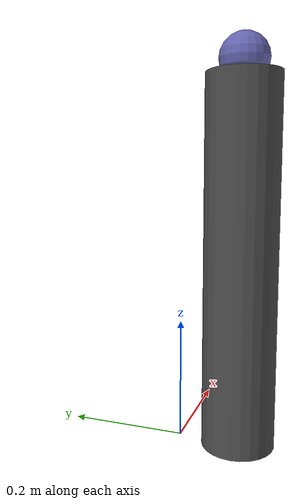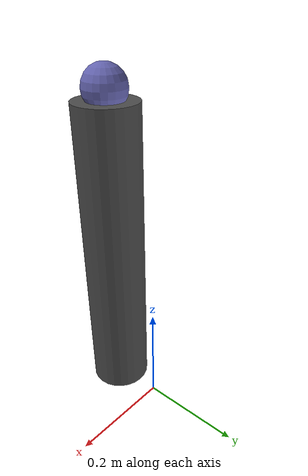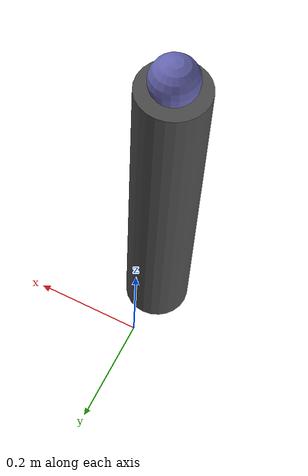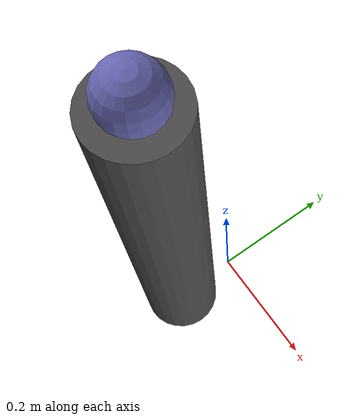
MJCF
<?xml version='1.0' encoding='utf-8'?>
<mujoco model="SimpleArm">
  <compiler angle="radian" />

  <default>
    <joint limited="true" damping="1.0" armature="0.01" />
    <!-- Arm geoms use contype=2: collide with cup (3) and floor (affi=3), not table (1) -->
    <geom contype="2" conaffinity="2" condim="3" friction="1.0 0.5 0.01" />
    <position ctrlrange="-1 1" kp="50" />
  </default>

  <worldbody>
    <body name="base" pos="0 -0.10 0">
      <!-- Pedestal: raises the arm above the table surface -->
      <geom name="pedestal" type="cylinder" size="0.06 0.30"
            pos="0 0 0.30" rgba="0.3 0.3 0.3 1.0"
            contype="1" conaffinity="1" />

      <!-- Shoulder yaw: rotates arm around vertical axis -->
      <body name="shoulder" pos="0 0 0.62">
        <inertial pos="0 0 0" mass="1.0"
                  fullinertia="0.002 0.002 0.002 0 0 0" />
        <joint name="shoulder_yaw" type="hinge" axis="0 0 1"
               range="-3.14159 3.14159" damping="5.0" />
        <geom name="shoulder_geom" type="sphere" size="0.04"
              rgba="0.4 0.4 0.7 1.0" />

        <!-- Shoulder pitch: tilts arm up/down -->
        <body name="upper_arm" pos="0 0 0">
          <inertial pos="0 0 -0.125" mass="2.0"
                    fullinertia="0.02 0.02 0.003 0 0 0" />
          <joint name="shoulder_pitch" type="hinge" axis="1 0 0"
                 range="-1.571 2.618" damping="5.0" />
          <geom name="upper_arm_geom" type="capsule"
                fromto="0 0 0 0 0 -0.25" size="0.025"
                rgba="0.4 0.4 0.7 1.0" />

          <!-- Elbow: bends forearm -->
          <body name="forearm" pos="0 0 -0.25">
            <inertial pos="0 0 -0.10" mass="1.0"
                      fullinertia="0.008 0.008 0.001 0 0 0" />
            <joint name="elbow" type="hinge" axis="1 0 0"
                   range="-2.356 0" damping="3.0" />
            <geom name="forearm_geom" type="capsule"
                  fromto="0 0 0 0 0 -0.20" size="0.02"
                  rgba="0.4 0.7 0.4 1.0" />

            <!-- Wrist pitch: tilts end effector -->
            <body name="wrist" pos="0 0 -0.20">
              <inertial pos="0 0 0" mass="0.3"
                        fullinertia="0.0005 0.0005 0.0005 0 0 0" />
              <joint name="wrist_pitch" type="hinge" axis="1 0 0"
                     range="-1.571 1.571" damping="1.0" />

              <!-- Wrist roll: rotates end effector -->
              <body name="wrist_roll_link" pos="0 0 0">
                <inertial pos="0 0 -0.015" mass="0.2"
                          fullinertia="0.0002 0.0002 0.0001 0 0 0" />
                <joint name="wrist_roll" type="hinge" axis="0 0 1"
                       range="-3.14159 3.14159" damping="0.2" />
                <geom name="wrist_geom" type="cylinder" size="0.018 0.015"
                      rgba="0.7 0.4 0.4 1.0" />

                <!-- Gripper base -->
                <body name="gripper_base" pos="0 0 -0.025">
                  <inertial pos="0 0 0" mass="0.1"
                            fullinertia="0.0001 0.0001 0.0001 0 0 0" />
                  <geom name="gripper_base_geom" type="box"
                        size="0.015 0.025 0.008"
                        rgba="0.3 0.3 0.3 1.0" />

                  <!-- Site at the gripper center for distance tracking -->
                  <site name="gripper_site" pos="0 0 -0.05" size="0.005" />

                  <!-- Left finger (slides outward in -Y to open) -->
                  <body name="finger_left" pos="0 -0.005 -0.008">
                    <inertial pos="0 0 -0.035" mass="0.05"
                              fullinertia="0.00002 0.00002 0.000005 0 0 0" />
                    <joint name="finger_left" type="slide" axis="0 -1 0"
                           range="0 0.025" damping="0.5" />
                    <geom name="finger_left_geom" type="box"
                          size="0.008 0.005 0.035"
                          pos="0 0 -0.035"
                          rgba="0.8 0.8 0.3 1.0" friction="2.0 1.0 0.01" />
                    <!-- Touch sensor site on inner face -->
                    <site name="finger_left_touch" pos="0 0.005 -0.035"
                          size="0.005" />
                  </body>

                  <!-- Right finger (slides outward in +Y to open) -->
                  <body name="finger_right" pos="0 0.005 -0.008">
                    <inertial pos="0 0 -0.035" mass="0.05"
                              fullinertia="0.00002 0.00002 0.000005 0 0 0" />
                    <joint name="finger_right" type="slide" axis="0 1 0"
                           range="0 0.025" damping="0.5" />
                    <geom name="finger_right_geom" type="box"
                          size="0.008 0.005 0.035"
                          pos="0 0 -0.035"
                          rgba="0.8 0.8 0.3 1.0" friction="2.0 1.0 0.01" />
                    <!-- Touch sensor site on inner face -->
                    <site name="finger_right_touch" pos="0 -0.005 -0.035"
                          size="0.005" />
                  </body>
                </body>
              </body>
            </body>
          </body>
        </body>
      </body>
    </body>
  </worldbody>

  <!-- Couple the two fingers so one actuator controls both -->
  <equality>
    <joint joint1="finger_left" joint2="finger_right"
           polycoef="0 1 0 0 0" />
  </equality>

  <contact>
    <!-- Exclude adjacent body pairs from self-collision -->
    <exclude body1="base" body2="shoulder" />
    <exclude body1="shoulder" body2="upper_arm" />
    <exclude body1="upper_arm" body2="forearm" />
    <exclude body1="forearm" body2="wrist" />
    <exclude body1="wrist" body2="wrist_roll_link" />
    <exclude body1="wrist_roll_link" body2="gripper_base" />
    <exclude body1="gripper_base" body2="finger_left" />
    <exclude body1="gripper_base" body2="finger_right" />
    <!-- Arm hangs inside pedestal at rest — exclude base vs all arm bodies -->
    <exclude body1="base" body2="upper_arm" />
    <exclude body1="base" body2="forearm" />
    <exclude body1="base" body2="wrist" />
    <exclude body1="base" body2="wrist_roll_link" />
    <exclude body1="base" body2="gripper_base" />
    <exclude body1="base" body2="finger_left" />
    <exclude body1="base" body2="finger_right" />
    <!-- Near-joint geom overlaps (wrist_geom is on wrist_roll_link body) -->
    <exclude body1="forearm" body2="wrist_roll_link" />
    <exclude body1="forearm" body2="gripper_base" />
  </contact>

  <actuator>
    <!-- 5-DOF arm joints (position control, ctrlrange matches joint range) -->
    <position name="shoulder_yaw_motor" joint="shoulder_yaw" kp="200"
              ctrlrange="-3.14159 3.14159" />
    <position name="shoulder_pitch_motor" joint="shoulder_pitch" kp="200"
              ctrlrange="-1.571 2.618" />
    <position name="elbow_motor" joint="elbow" kp="100"
              ctrlrange="-2.356 0" />
    <position name="wrist_pitch_motor" joint="wrist_pitch" kp="50"
              ctrlrange="-1.571 1.571" />
    <position name="wrist_roll_motor" joint="wrist_roll" kp="20"
              ctrlrange="-3.14159 3.14159" />
    <!-- Gripper (coupled: controls both fingers via equality constraint) -->
    <position name="gripper_motor" joint="finger_left" kp="40"
              ctrlrange="0 0.025" />
  </actuator>

  <sensor>
    <!-- Joint position sensors (5 arm + 1 gripper) -->
    <jointpos name="shoulder_yaw_pos" joint="shoulder_yaw" />
    <jointpos name="shoulder_pitch_pos" joint="shoulder_pitch" />
    <jointpos name="elbow_pos" joint="elbow" />
    <jointpos name="wrist_pitch_pos" joint="wrist_pitch" />
    <jointpos name="wrist_roll_pos" joint="wrist_roll" />
    <jointpos name="finger_pos" joint="finger_left" />
    <!-- Joint velocity sensors (5 arm + 1 gripper) -->
    <jointvel name="shoulder_yaw_vel" joint="shoulder_yaw" />
    <jointvel name="shoulder_pitch_vel" joint="shoulder_pitch" />
    <jointvel name="elbow_vel" joint="elbow" />
    <jointvel name="wrist_pitch_vel" joint="wrist_pitch" />
    <jointvel name="wrist_roll_vel" joint="wrist_roll" />
    <jointvel name="finger_vel" joint="finger_left" />
    <!-- Fingertip touch sensors -->
    <touch name="finger_left_touch" site="finger_left_touch" />
    <touch name="finger_right_touch" site="finger_right_touch" />
  </sensor>
</mujoco>
